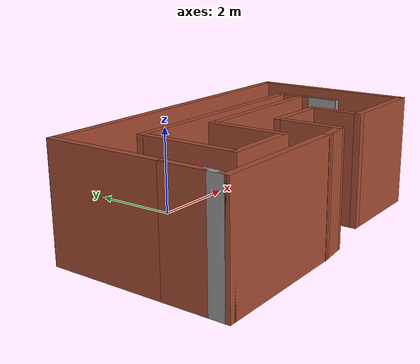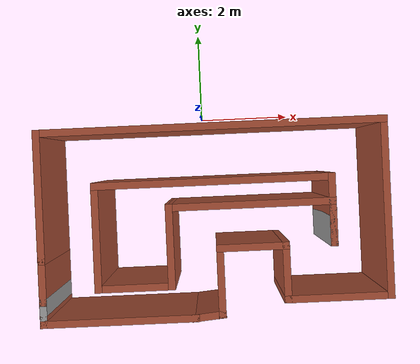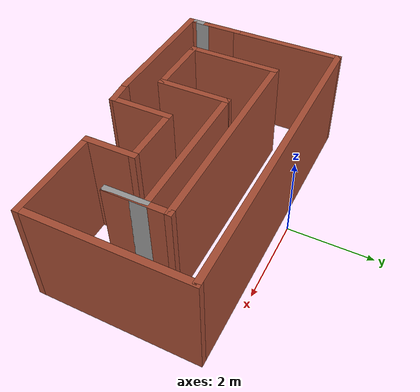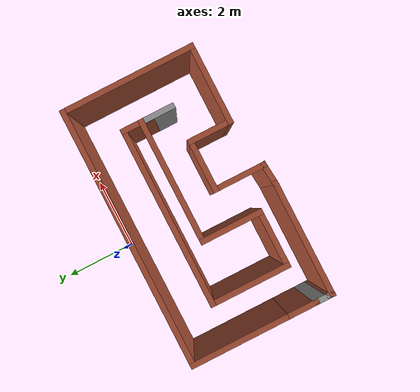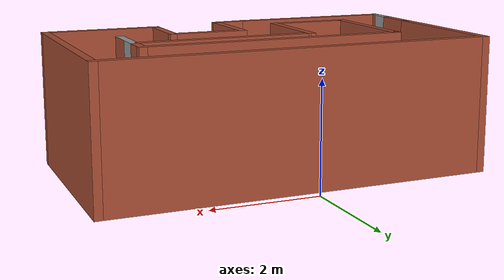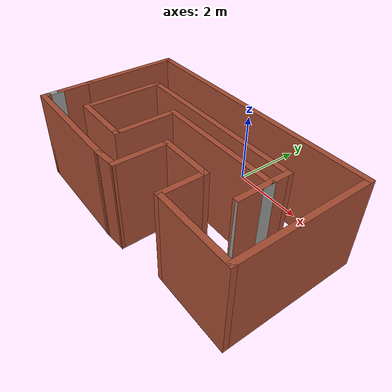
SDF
<?xml version='1.0'?>
<sdf version='1.7'>
  <model name='simple_track'>
    <pose>0.19 -2.12074 0 0 -0 0</pose>
    <link name='Wall_0'>
      <collision name='Wall_0_Collision'>
        <geometry>
          <box>
            <size>2.75 0.15 2.5</size>
          </box>
        </geometry>
        <pose>0 0 1.25 0 -0 0</pose>
      </collision>
      <visual name='Wall_0_Visual'>
        <pose>0 0 1.25 0 -0 0</pose>
        <geometry>
          <box>
            <size>2.75 0.15 2.5</size>
          </box>
        </geometry>
        <material>
          <script>
            <uri>file://media/materials/scripts/gazebo.material</uri>
            <name>Gazebo/Bricks</name>
          </script>
          <ambient>1 1 1 1</ambient>
        </material>
        <meta>
          <layer>0</layer>
        </meta>
      </visual>
      <pose>-3.55 0.560741 0 0 -0 1.5708</pose>
    </link>
    <link name='Wall_1'>
      <collision name='Wall_1_Collision'>
        <geometry>
          <box>
            <size>7.25 0.15 2.5</size>
          </box>
        </geometry>
        <pose>0 0 1.25 0 -0 0</pose>
      </collision>
      <visual name='Wall_1_Visual'>
        <pose>0 0 1.25 0 -0 0</pose>
        <geometry>
          <box>
            <size>7.25 0.15 2.5</size>
          </box>
        </geometry>
        <material>
          <script>
            <uri>file://media/materials/scripts/gazebo.material</uri>
            <name>Gazebo/Bricks</name>
          </script>
          <ambient>1 1 1 1</ambient>
        </material>
        <meta>
          <layer>0</layer>
        </meta>
      </visual>
      <pose>-0 1.86074 0 0 -0 0</pose>
    </link>
    <link name='Wall_10'>
      <collision name='Wall_10_Collision'>
        <geometry>
          <box>
            <size>1 0.15 2.5</size>
          </box>
        </geometry>
        <pose>0 0 1.25 0 -0 0</pose>
      </collision>
      <visual name='Wall_10_Visual'>
        <pose>0 0 1.25 0 -0 0</pose>
        <geometry>
          <box>
            <size>1 0.15 2.5</size>
          </box>
        </geometry>
        <material>
          <script>
            <uri>file://media/materials/scripts/gazebo.material</uri>
            <name>Gazebo/Bricks</name>
          </script>
          <ambient>1 1 1 1</ambient>
        </material>
        <meta>
          <layer>0</layer>
        </meta>
      </visual>
      <pose>-3.55 -1.16426 0 0 -0 -1.5708</pose>
    </link>
    <link name='Wall_12'>
      <collision name='Wall_12_Collision'>
        <geometry>
          <box>
            <size>0.5 0.15 2.5</size>
          </box>
        </geometry>
        <pose>0 0 1.25 0 -0 0</pose>
      </collision>
      <visual name='Wall_12_Visual'>
        <pose>0 0 1.25 0 -0 0</pose>
        <geometry>
          <box>
            <size>0.5 0.15 2.5</size>
          </box>
        </geometry>
        <material>
          <script>
            <uri>file://media/materials/scripts/gazebo.material</uri>
            <name>Gazebo/Grey</name>
          </script>
          <ambient>1 1 1 1</ambient>
        </material>
        <meta>
          <layer>0</layer>
        </meta>
      </visual>
      <pose>-3.55 -1.76426 0 0 -0 -1.5708</pose>
    </link>
    <link name='Wall_13'>
      <collision name='Wall_13_Collision'>
        <geometry>
          <box>
            <size>0.25 0.15 2.5</size>
          </box>
        </geometry>
        <pose>0 0 1.25 0 -0 0</pose>
      </collision>
      <visual name='Wall_13_Visual'>
        <pose>0 0 1.25 0 -0 0</pose>
        <geometry>
          <box>
            <size>0.25 0.15 2.5</size>
          </box>
        </geometry>
        <material>
          <script>
            <uri>file://media/materials/scripts/gazebo.material</uri>
            <name>Gazebo/Bricks</name>
          </script>
          <ambient>1 1 1 1</ambient>
        </material>
        <meta>
          <layer>0</layer>
        </meta>
      </visual>
      <pose>-3.55 -1.98926 0 0 -0 -1.5708</pose>
    </link>
    <link name='Wall_14'>
      <collision name='Wall_14_Collision'>
        <geometry>
          <box>
            <size>3.25 0.15 2.5</size>
          </box>
        </geometry>
        <pose>0 0 1.25 0 -0 0</pose>
      </collision>
      <visual name='Wall_14_Visual'>
        <pose>0 0 1.25 0 -0 0</pose>
        <geometry>
          <box>
            <size>3.25 0.15 2.5</size>
          </box>
        </geometry>
        <material>
          <script>
            <uri>file://media/materials/scripts/gazebo.material</uri>
            <name>Gazebo/Bricks</name>
          </script>
          <ambient>0.435294 0.796078 0.67451 1</ambient>
        </material>
        <meta>
          <layer>0</layer>
        </meta>
      </visual>
      <pose>-2 -2.03926 0 0 -0 0</pose>
    </link>
    <link name='Wall_15'>
      <collision name='Wall_15_Collision'>
        <geometry>
          <box>
            <size>0.702268 0.15 2.5</size>
          </box>
        </geometry>
        <pose>0 0 1.25 0 -0 0</pose>
      </collision>
      <visual name='Wall_15_Visual'>
        <pose>0 0 1.25 0 -0 0</pose>
        <geometry>
          <box>
            <size>0.702268 0.15 2.5</size>
          </box>
        </geometry>
        <material>
          <script>
            <uri>file://media/materials/scripts/gazebo.material</uri>
            <name>Gazebo/Bricks</name>
          </script>
          <ambient>1 1 1 1</ambient>
        </material>
        <meta>
          <layer>0</layer>
        </meta>
      </visual>
      <pose>-0.175 -2.01426 0 0 -0 0.09066</pose>
    </link>
    <link name='Wall_17'>
      <collision name='Wall_17_Collision'>
        <geometry>
          <box>
            <size>1.75 0.15 2.5</size>
          </box>
        </geometry>
        <pose>0 0 1.25 0 -0 0</pose>
      </collision>
      <visual name='Wall_17_Visual'>
        <pose>0 0 1.25 0 -0 0</pose>
        <geometry>
          <box>
            <size>1.75 0.15 2.5</size>
          </box>
        </geometry>
        <material>
          <script>
            <uri>file://media/materials/scripts/gazebo.material</uri>
            <name>Gazebo/Bricks</name>
          </script>
          <ambient>1 1 1 1</ambient>
        </material>
        <meta>
          <layer>0</layer>
        </meta>
      </visual>
      <pose>-0.91 -0.569259 0 0 -0 1.5708</pose>
    </link>
    <link name='Wall_18'>
      <collision name='Wall_18_Collision'>
        <geometry>
          <box>
            <size>3.5 0.15 2.5</size>
          </box>
        </geometry>
        <pose>0 0 1.25 0 -0 0</pose>
      </collision>
      <visual name='Wall_18_Visual'>
        <pose>0 0 1.25 0 -0 0</pose>
        <geometry>
          <box>
            <size>3.5 0.15 2.5</size>
          </box>
        </geometry>
        <material>
          <script>
            <uri>file://media/materials/scripts/gazebo.material</uri>
            <name>Gazebo/Bricks</name>
          </script>
          <ambient>1 1 1 1</ambient>
        </material>
        <meta>
          <layer>0</layer>
        </meta>
      </visual>
      <pose>0.765 0.230741 0 0 -0 0</pose>
    </link>
    <link name='Wall_19'>
      <collision name='Wall_19_Collision'>
        <geometry>
          <box>
            <size>1 0.15 2.5</size>
          </box>
        </geometry>
        <pose>0 0 1.25 0 -0 0</pose>
      </collision>
      <visual name='Wall_19_Visual'>
        <pose>0 0 1.25 0 -0 0</pose>
        <geometry>
          <box>
            <size>1 0.15 2.5</size>
          </box>
        </geometry>
        <material>
          <script>
            <uri>file://media/materials/scripts/gazebo.material</uri>
            <name>Gazebo/Grey</name>
          </script>
          <ambient>1 1 1 1</ambient>
        </material>
        <meta>
          <layer>0</layer>
        </meta>
      </visual>
      <pose>2.44 -0.194259 0 0 -0 -1.5708</pose>
    </link>
    <link name='Wall_2'>
      <collision name='Wall_2_Collision'>
        <geometry>
          <box>
            <size>3.75 0.15 2.5</size>
          </box>
        </geometry>
        <pose>0 0 1.25 0 -0 0</pose>
      </collision>
      <visual name='Wall_2_Visual'>
        <pose>0 0 1.25 0 -0 0</pose>
        <geometry>
          <box>
            <size>3.75 0.15 2.5</size>
          </box>
        </geometry>
        <material>
          <script>
            <uri>file://media/materials/scripts/gazebo.material</uri>
            <name>Gazebo/Bricks</name>
          </script>
          <ambient>0.435294 0.796078 0.67451 1</ambient>
        </material>
        <meta>
          <layer>0</layer>
        </meta>
      </visual>
      <pose>3.55 0.060741 0 0 -0 -1.5708</pose>
    </link>
    <link name='Wall_20'>
      <collision name='Wall_20_Collision'>
        <geometry>
          <box>
            <size>1.5 0.15 2.5</size>
          </box>
        </geometry>
        <pose>0 0 1.25 0 -0 0</pose>
      </collision>
      <visual name='Wall_20_Visual'>
        <pose>0 0 1.25 0 -0 0</pose>
        <geometry>
          <box>
            <size>1.5 0.15 2.5</size>
          </box>
        </geometry>
        <material>
          <script>
            <uri>file://media/materials/scripts/gazebo.material</uri>
            <name>Gazebo/Bricks</name>
          </script>
          <ambient>1 1 1 1</ambient>
        </material>
        <meta>
          <layer>0</layer>
        </meta>
      </visual>
      <pose>2.44 0.055741 0 0 -0 1.5708</pose>
    </link>
    <link name='Wall_21'>
      <collision name='Wall_21_Collision'>
        <geometry>
          <box>
            <size>5 0.15 2.5</size>
          </box>
        </geometry>
        <pose>0 0 1.25 0 -0 0</pose>
      </collision>
      <visual name='Wall_21_Visual'>
        <pose>0 0 1.25 0 -0 0</pose>
        <geometry>
          <box>
            <size>5 0.15 2.5</size>
          </box>
        </geometry>
        <material>
          <script>
            <uri>file://media/materials/scripts/gazebo.material</uri>
            <name>Gazebo/Bricks</name>
          </script>
          <ambient>1 1 1 1</ambient>
        </material>
        <meta>
          <layer>0</layer>
        </meta>
      </visual>
      <pose>0.015 0.730741 0 0 -0 3.14159</pose>
    </link>
    <link name='Wall_22'>
      <collision name='Wall_22_Collision'>
        <geometry>
          <box>
            <size>2.25 0.15 2.5</size>
          </box>
        </geometry>
        <pose>0 0 1.25 0 -0 0</pose>
      </collision>
      <visual name='Wall_22_Visual'>
        <pose>0 0 1.25 0 -0 0</pose>
        <geometry>
          <box>
            <size>2.25 0.15 2.5</size>
          </box>
        </geometry>
        <material>
          <script>
            <uri>file://media/materials/scripts/gazebo.material</uri>
            <name>Gazebo/Bricks</name>
          </script>
          <ambient>1 1 1 1</ambient>
        </material>
        <meta>
          <layer>0</layer>
        </meta>
      </visual>
      <pose>-2.41 -0.319259 0 0 -0 -1.5708</pose>
    </link>
    <link name='Wall_23'>
      <collision name='Wall_23_Collision'>
        <geometry>
          <box>
            <size>1.65 0.15 2.5</size>
          </box>
        </geometry>
        <pose>0 0 1.25 0 -0 0</pose>
      </collision>
      <visual name='Wall_23_Visual'>
        <pose>0 0 1.25 0 -0 0</pose>
        <geometry>
          <box>
            <size>1.65 0.15 2.5</size>
          </box>
        </geometry>
        <material>
          <script>
            <uri>file://media/materials/scripts/gazebo.material</uri>
            <name>Gazebo/Bricks</name>
          </script>
          <ambient>1 1 1 1</ambient>
        </material>
        <meta>
          <layer>0</layer>
        </meta>
      </visual>
      <pose>-1.66 -1.36926 0 0 -0 0</pose>
    </link>
    <link name='Wall_3'>
      <collision name='Wall_3_Collision'>
        <geometry>
          <box>
            <size>2.25 0.15 2.5</size>
          </box>
        </geometry>
        <pose>0 0 1.25 0 -0 0</pose>
      </collision>
      <visual name='Wall_3_Visual'>
        <pose>0 0 1.25 0 -0 0</pose>
        <geometry>
          <box>
            <size>2.25 0.15 2.5</size>
          </box>
        </geometry>
        <material>
          <script>
            <uri>file://media/materials/scripts/gazebo.material</uri>
            <name>Gazebo/Bricks</name>
          </script>
          <ambient>0.435294 0.796078 0.67451 1</ambient>
        </material>
        <meta>
          <layer>0</layer>
        </meta>
      </visual>
      <pose>2.5 -1.73926 0 0 -0 3.14159</pose>
    </link>
    <link name='Wall_4'>
      <collision name='Wall_4_Collision'>
        <geometry>
          <box>
            <size>1.25 0.15 2.5</size>
          </box>
        </geometry>
        <pose>0 0 1.25 0 -0 0</pose>
      </collision>
      <visual name='Wall_4_Visual'>
        <pose>0 0 1.25 0 -0 0</pose>
        <geometry>
          <box>
            <size>1.25 0.15 2.5</size>
          </box>
        </geometry>
        <material>
          <script>
            <uri>file://media/materials/scripts/gazebo.material</uri>
            <name>Gazebo/Bricks</name>
          </script>
          <ambient>1 1 1 1</ambient>
        </material>
        <meta>
          <layer>0</layer>
        </meta>
      </visual>
      <pose>1.45 -1.18926 0 0 -0 1.5708</pose>
    </link>
    <link name='Wall_5'>
      <collision name='Wall_5_Collision'>
        <geometry>
          <box>
            <size>1.5 0.15 2.5</size>
          </box>
        </geometry>
        <pose>0 0 1.25 0 -0 0</pose>
      </collision>
      <visual name='Wall_5_Visual'>
        <pose>0 0 1.25 0 -0 0</pose>
        <geometry>
          <box>
            <size>1.5 0.15 2.5</size>
          </box>
        </geometry>
        <material>
          <script>
            <uri>file://media/materials/scripts/gazebo.material</uri>
            <name>Gazebo/Bricks</name>
          </script>
          <ambient>1 1 1 1</ambient>
        </material>
        <meta>
          <layer>0</layer>
        </meta>
      </visual>
      <pose>0.775 -0.639259 0 0 -0 3.14159</pose>
    </link>
    <link name='Wall_6'>
      <collision name='Wall_6_Collision'>
        <geometry>
          <box>
            <size>1.5 0.15 2.5</size>
          </box>
        </geometry>
        <pose>0 0 1.25 0 -0 0</pose>
      </collision>
      <visual name='Wall_6_Visual'>
        <pose>0 0 1.25 0 -0 0</pose>
        <geometry>
          <box>
            <size>1.5 0.15 2.5</size>
          </box>
        </geometry>
        <material>
          <script>
            <uri>file://media/materials/scripts/gazebo.material</uri>
            <name>Gazebo/Bricks</name>
          </script>
          <ambient>0.435294 0.796078 0.67451 1</ambient>
        </material>
        <meta>
          <layer>0</layer>
        </meta>
      </visual>
      <pose>0.1 -1.31426 0 0 -0 -1.5708</pose>
    </link>
    <static>1</static>
  </model>
</sdf>
